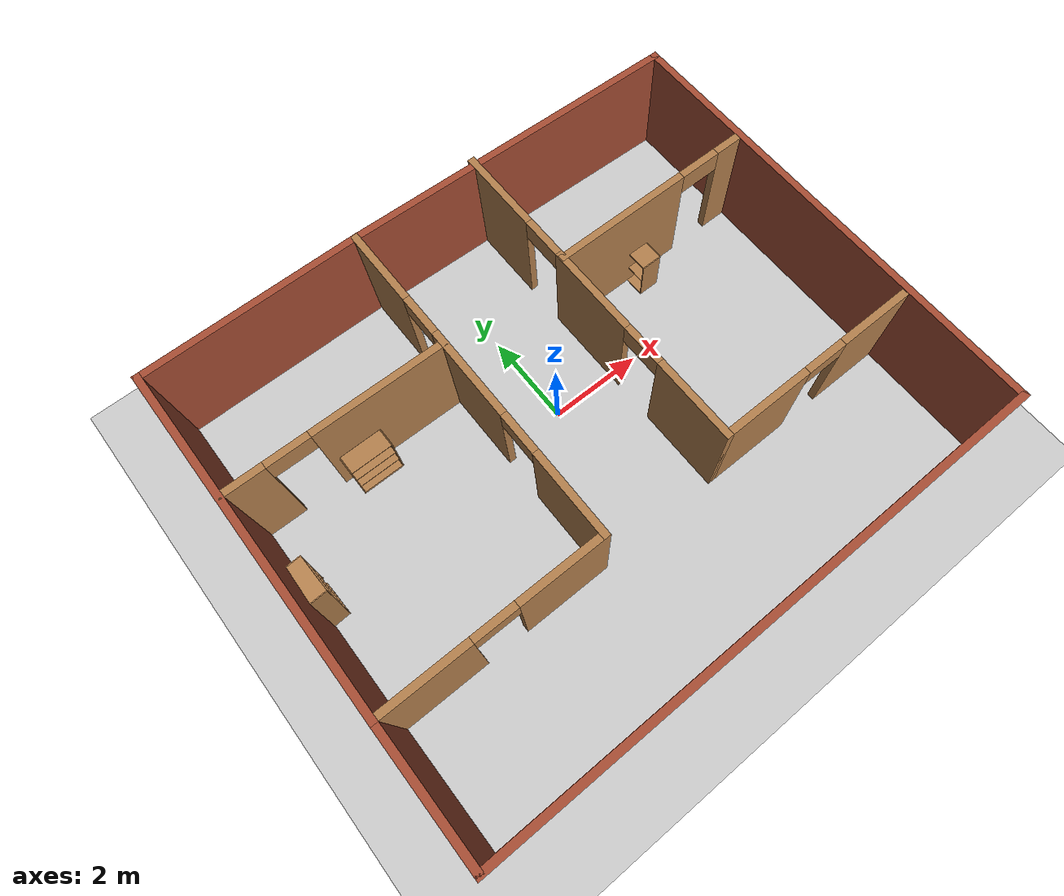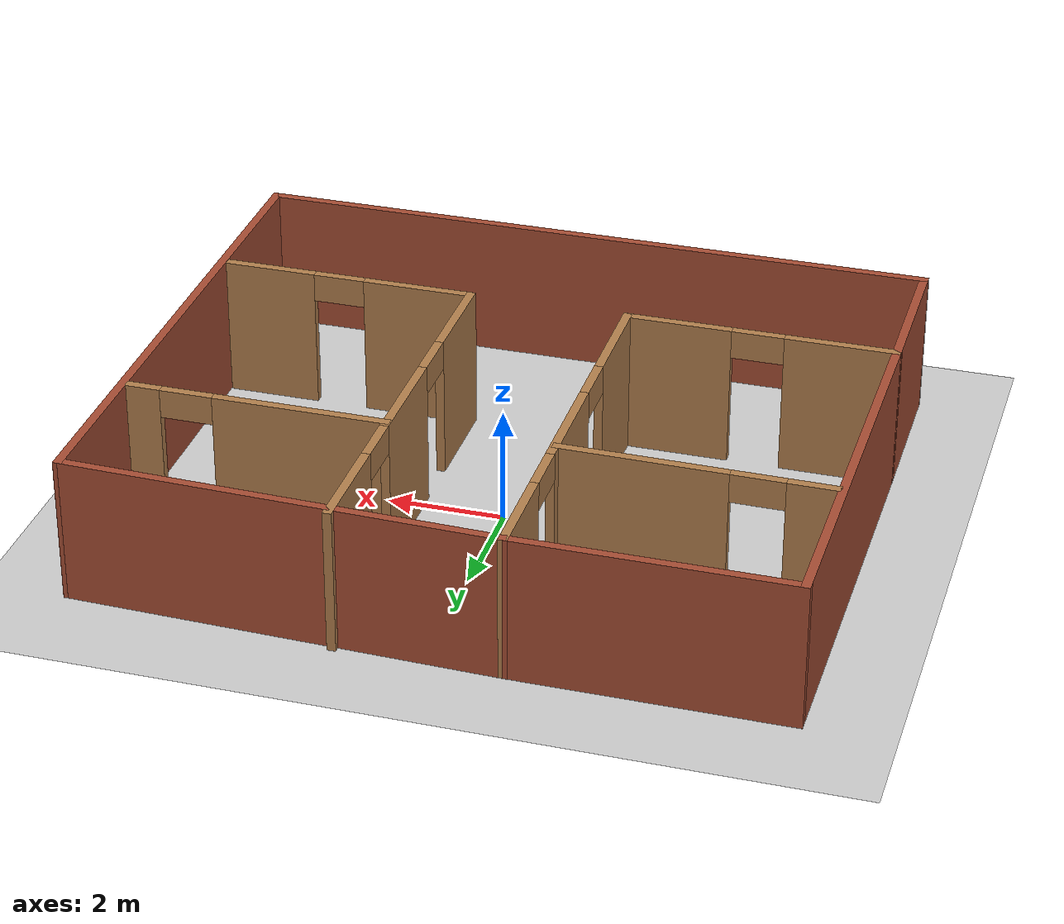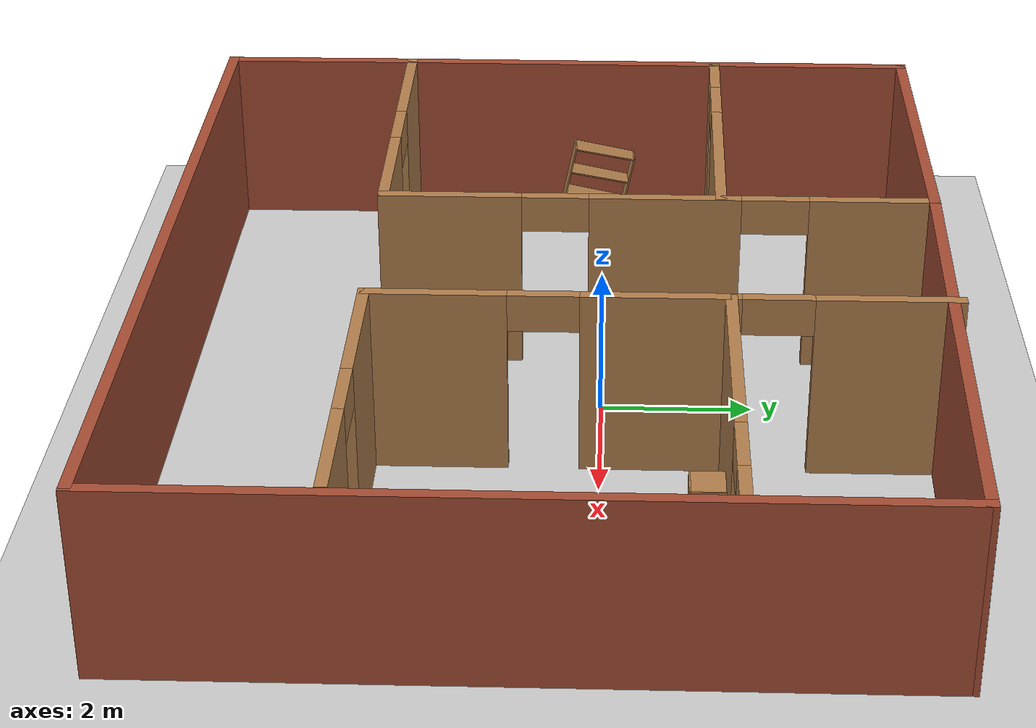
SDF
<sdf version="1.7">
 <world name="default">
  <light name="sun" type="directional">
   <pose>0 0 10 0 -0 0</pose>
   <diffuse>0.8 0.8 0.8 1</diffuse>
   <specular>0.2 0.2 0.2 1</specular>
   <attenuation>
    <range>1000</range>
    <constant>0.9</constant>
    <linear>0.01</linear>
    <quadratic>0.001</quadratic>
   </attenuation>
   <direction>-0.5 0.1 -0.9</direction>
   <spot><inner_angle>0</inner_angle><outer_angle>0</outer_angle><falloff>0</falloff></spot>
  </light>
  <model name="ground_plane">
   <static>1</static>
   <link name="link">
    <collision name="collision">
     <geometry><plane><normal>0 0 1</normal><size>100 100</size></plane></geometry>
     <surface>
      <contact><collide_bitmask>65535</collide_bitmask></contact>
      <friction><ode><mu>100</mu><mu2>50</mu2></ode></friction>
     </surface>
    </collision>
    <visual name="visual">
     <cast_shadows>0</cast_shadows>
     <geometry><plane><normal>0 0 1</normal><size>100 100</size></plane></geometry>
     <material>
      <script><uri>file://media/materials/scripts/gazebo.material</uri><name>Gazebo/Grey</name></script>
     </material>
    </visual>
   </link>
  </model>
  <gravity>0 0 -9.8</gravity>
  <magnetic_field>6e-06 2.3e-05 -4.2e-05</magnetic_field>
  <atmosphere type="adiabatic"/>
  <physics type="ode">
   <max_step_size>0.001</max_step_size>
   <real_time_factor>1</real_time_factor>
   <real_time_update_rate>1000</real_time_update_rate>
  </physics>
  <scene><ambient>0.4 0.4 0.4 1</ambient><background>0.7 0.7 0.7 1</background><shadows>1</shadows></scene>
  <audio><device>default</device></audio>
  <spherical_coordinates>
   <surface_model>EARTH_WGS84</surface_model>
   <latitude_deg>0</latitude_deg>
   <longitude_deg>0</longitude_deg>
   <elevation>0</elevation>
   <heading_deg>0</heading_deg>
  </spherical_coordinates>
  <model name="my_floor">
   <pose>0.028516 -0.622808 0 0 -0 0</pose>
   <link name="Wall_0">
    <collision name="Wall_0_Collision">
     <geometry><box><size>7.5 0.15 2.5</size></box></geometry>
     <pose>0 0 1.25 0 -0 0</pose>
    </collision>
    <visual name="Wall_0_Visual">
     <pose>0 0 1.25 0 -0 0</pose>
     <geometry><box><size>7.5 0.15 2.5</size></box></geometry>
     <material>
      <script><uri>file://media/materials/scripts/gazebo.material</uri><name>Gazebo/Bricks</name></script>
      <ambient>1 1 1 1</ambient>
     </material>
     <meta><layer>0</layer></meta>
    </visual>
    <pose>-5.93583 1.34361 0 0 -0 -1.5708</pose>
   </link>
   <link name="Wall_1">
    <pose>-3.63583 -2.33139 0 0 -0 0</pose>
    <visual name="Wall_1_Visual_0">
     <pose>-1.39591 0 1.25 0 -0 0</pose>
     <geometry><box><size>1.95817 0.15 2.5</size></box></geometry>
     <material>
      <script><uri>file://media/materials/scripts/gazebo.material</uri><name>Gazebo/Wood</name></script>
      <ambient>1 1 1 1</ambient>
     </material>
     <meta><layer>0</layer></meta>
    </visual>
    <collision name="Wall_1_Collision_0">
     <geometry><box><size>1.95817 0.15 2.5</size></box></geometry>
     <pose>-1.39591 0 1.25 0 -0 0</pose>
    </collision>
    <visual name="Wall_1_Visual_1">
     <pose>1.42909 0 1.25 0 -0 0</pose>
     <geometry><box><size>1.89183 0.15 2.5</size></box></geometry>
     <material>
      <script><uri>file://media/materials/scripts/gazebo.material</uri><name>Gazebo/Wood</name></script>
      <ambient>1 1 1 1</ambient>
     </material>
     <meta><layer>0</layer></meta>
    </visual>
    <collision name="Wall_1_Collision_1">
     <geometry><box><size>1.89183 0.15 2.5</size></box></geometry>
     <pose>1.42909 0 1.25 0 -0 0</pose>
    </collision>
    <visual name="Wall_1_Visual_2">
     <pose>0.033174 0 2.25 0 -0 0</pose>
     <geometry><box><size>0.9 0.15 0.5</size></box></geometry>
     <material>
      <script><uri>file://media/materials/scripts/gazebo.material</uri><name>Gazebo/Wood</name></script>
      <ambient>1 1 1 1</ambient>
     </material>
     <meta><layer>0</layer></meta>
    </visual>
    <collision name="Wall_1_Collision_2">
     <geometry><box><size>0.9 0.15 0.5</size></box></geometry>
     <pose>0.033174 0 2.25 0 -0 0</pose>
    </collision>
   </link>
   <link name="Wall_11">
    <pose>1.42574 1.36373 0 0 -0 -1.5708</pose>
    <visual name="Wall_11_Visual_0">
     <pose>-2.8212 0 1.25 0 -0 0</pose>
     <geometry><box><size>1.85761 0.15 2.5</size></box></geometry>
     <material>
      <script><uri>file://media/materials/scripts/gazebo.material</uri><name>Gazebo/Wood</name></script>
      <ambient>1 1 1 1</ambient>
     </material>
     <meta><layer>0</layer></meta>
    </visual>
    <collision name="Wall_11_Collision_0">
     <geometry><box><size>1.85761 0.15 2.5</size></box></geometry>
     <pose>-2.8212 0 1.25 0 -0 0</pose>
    </collision>
    <visual name="Wall_11_Visual_1">
     <pose>0.005784 0 1.25 0 -0 0</pose>
     <geometry><box><size>1.99635 0.15 2.5</size></box></geometry>
     <material>
      <script><uri>file://media/materials/scripts/gazebo.material</uri><name>Gazebo/Wood</name></script>
      <ambient>1 1 1 1</ambient>
     </material>
     <meta><layer>0</layer></meta>
    </visual>
    <collision name="Wall_11_Collision_1">
     <geometry><box><size>1.99635 0.15 2.5</size></box></geometry>
     <pose>0.005784 0 1.25 0 -0 0</pose>
    </collision>
    <visual name="Wall_11_Visual_2">
     <pose>2.82698 0 1.25 0 -0 0</pose>
     <geometry><box><size>1.84604 0.15 2.5</size></box></geometry>
     <material>
      <script><uri>file://media/materials/scripts/gazebo.material</uri><name>Gazebo/Wood</name></script>
      <ambient>1 1 1 1</ambient>
     </material>
     <meta><layer>0</layer></meta>
    </visual>
    <collision name="Wall_11_Collision_2">
     <geometry><box><size>1.84604 0.15 2.5</size></box></geometry>
     <pose>2.82698 0 1.25 0 -0 0</pose>
    </collision>
    <visual name="Wall_11_Visual_3">
     <pose>-1.44239 0 2.25 0 -0 0</pose>
     <geometry><box><size>0.9 0.15 0.5</size></box></geometry>
     <material>
      <script><uri>file://media/materials/scripts/gazebo.material</uri><name>Gazebo/Wood</name></script>
      <ambient>1 1 1 1</ambient>
     </material>
     <meta><layer>0</layer></meta>
    </visual>
    <collision name="Wall_11_Collision_3">
     <geometry><box><size>0.9 0.15 0.5</size></box></geometry>
     <pose>-1.44239 0 2.25 0 -0 0</pose>
    </collision>
    <visual name="Wall_11_Visual_4">
     <pose>1.45396 0 2.25 0 -0 0</pose>
     <geometry><box><size>0.9 0.15 0.5</size></box></geometry>
     <material>
      <script><uri>file://media/materials/scripts/gazebo.material</uri><name>Gazebo/Wood</name></script>
      <ambient>1 1 1 1</ambient>
     </material>
     <meta><layer>0</layer></meta>
    </visual>
    <collision name="Wall_11_Collision_4">
     <geometry><box><size>0.9 0.15 0.5</size></box></geometry>
     <pose>1.45396 0 2.25 0 -0 0</pose>
    </collision>
   </link>
   <link name="Wall_12">
    <pose>3.60074 -2.31127 0 0 -0 0</pose>
    <visual name="Wall_12_Visual_0">
     <pose>-1.26086 0 1.25 0 -0 0</pose>
     <geometry><box><size>1.97829 0.15 2.5</size></box></geometry>
     <material>
      <script><uri>file://media/materials/scripts/gazebo.material</uri><name>Gazebo/Wood</name></script>
      <ambient>1 1 1 1</ambient>
     </material>
     <meta><layer>0</layer></meta>
    </visual>
    <collision name="Wall_12_Collision_0">
     <geometry><box><size>1.97829 0.15 2.5</size></box></geometry>
     <pose>-1.26086 0 1.25 0 -0 0</pose>
    </collision>
    <visual name="Wall_12_Visual_1">
     <pose>1.43914 0 1.25 0 -0 0</pose>
     <geometry><box><size>1.62171 0.15 2.5</size></box></geometry>
     <material>
      <script><uri>file://media/materials/scripts/gazebo.material</uri><name>Gazebo/Wood</name></script>
      <ambient>1 1 1 1</ambient>
     </material>
     <meta><layer>0</layer></meta>
    </visual>
    <collision name="Wall_12_Collision_1">
     <geometry><box><size>1.62171 0.15 2.5</size></box></geometry>
     <pose>1.43914 0 1.25 0 -0 0</pose>
    </collision>
    <visual name="Wall_12_Visual_2">
     <pose>0.178288 0 2.25 0 -0 0</pose>
     <geometry><box><size>0.9 0.15 0.5</size></box></geometry>
     <material>
      <script><uri>file://media/materials/scripts/gazebo.material</uri><name>Gazebo/Wood</name></script>
      <ambient>1 1 1 1</ambient>
     </material>
     <meta><layer>0</layer></meta>
    </visual>
    <collision name="Wall_12_Collision_2">
     <geometry><box><size>0.9 0.15 0.5</size></box></geometry>
     <pose>0.178288 0 2.25 0 -0 0</pose>
    </collision>
   </link>
   <link name="Wall_14">
    <pose>3.62085 2.22283 0 0 -0 0</pose>
    <visual name="Wall_14_Visual_0">
     <pose>-0.74796 0 1.25 0 -0 0</pose>
     <geometry><box><size>3.00408 0.15 2.5</size></box></geometry>
     <material>
      <script><uri>file://media/materials/scripts/gazebo.material</uri><name>Gazebo/Wood</name></script>
      <ambient>1 1 1 1</ambient>
     </material>
     <meta><layer>0</layer></meta>
    </visual>
    <collision name="Wall_14_Collision_0">
     <geometry><box><size>3.00408 0.15 2.5</size></box></geometry>
     <pose>-0.74796 0 1.25 0 -0 0</pose>
    </collision>
    <visual name="Wall_14_Visual_1">
     <pose>1.95204 0 1.25 0 -0 0</pose>
     <geometry><box><size>0.59592 0.15 2.5</size></box></geometry>
     <material>
      <script><uri>file://media/materials/scripts/gazebo.material</uri><name>Gazebo/Wood</name></script>
      <ambient>1 1 1 1</ambient>
     </material>
     <meta><layer>0</layer></meta>
    </visual>
    <collision name="Wall_14_Collision_1">
     <geometry><box><size>0.59592 0.15 2.5</size></box></geometry>
     <pose>1.95204 0 1.25 0 -0 0</pose>
    </collision>
    <visual name="Wall_14_Visual_2">
     <pose>1.20408 0 2.25 0 -0 0</pose>
     <geometry><box><size>0.9 0.15 0.5</size></box></geometry>
     <material>
      <script><uri>file://media/materials/scripts/gazebo.material</uri><name>Gazebo/Wood</name></script>
      <ambient>1 1 1 1</ambient>
     </material>
     <meta><layer>0</layer></meta>
    </visual>
    <collision name="Wall_14_Collision_2">
     <geometry><box><size>0.9 0.15 0.5</size></box></geometry>
     <pose>1.20408 0 2.25 0 -0 0</pose>
    </collision>
   </link>
   <link name="Wall_16">
    <collision name="Wall_16_Collision">
     <geometry><box><size>2.85686 0.15 2.5</size></box></geometry>
     <pose>0 0 1.25 0 -0 0</pose>
    </collision>
    <visual name="Wall_16_Visual">
     <pose>0 0 1.25 0 -0 0</pose>
     <geometry><box><size>2.85686 0.15 2.5</size></box></geometry>
     <material>
      <script><uri>file://media/materials/scripts/gazebo.material</uri><name>Gazebo/Bricks</name></script>
      <ambient>1 1 1 1</ambient>
     </material>
     <meta><layer>0</layer></meta>
    </visual>
    <pose>-5.92577 -3.68478 0 0 -0 -1.56337</pose>
   </link>
   <link name="Wall_2">
    <pose>-1.33583 1.34361 0 0 -0 1.5708</pose>
    <visual name="Wall_2_Visual_0">
     <pose>-2.78675 0 1.25 0 -0 0</pose>
     <geometry><box><size>1.92649 0.15 2.5</size></box></geometry>
     <material>
      <script><uri>file://media/materials/scripts/gazebo.material</uri><name>Gazebo/Wood</name></script>
      <ambient>1 1 1 1</ambient>
     </material>
     <meta><layer>0</layer></meta>
    </visual>
    <collision name="Wall_2_Collision_0">
     <geometry><box><size>1.92649 0.15 2.5</size></box></geometry>
     <pose>-2.78675 0 1.25 0 -0 0</pose>
    </collision>
    <visual name="Wall_2_Visual_1">
     <pose>0.094784 0 1.25 0 -0 0</pose>
     <geometry><box><size>2.03658 0.15 2.5</size></box></geometry>
     <material>
      <script><uri>file://media/materials/scripts/gazebo.material</uri><name>Gazebo/Wood</name></script>
      <ambient>1 1 1 1</ambient>
     </material>
     <meta><layer>0</layer></meta>
    </visual>
    <collision name="Wall_2_Collision_1">
     <geometry><box><size>2.03658 0.15 2.5</size></box></geometry>
     <pose>0.094784 0 1.25 0 -0 0</pose>
    </collision>
    <visual name="Wall_2_Visual_2">
     <pose>2.88154 0 1.25 0 -0 0</pose>
     <geometry><box><size>1.73693 0.15 2.5</size></box></geometry>
     <material>
      <script><uri>file://media/materials/scripts/gazebo.material</uri><name>Gazebo/Wood</name></script>
      <ambient>1 1 1 1</ambient>
     </material>
     <meta><layer>0</layer></meta>
    </visual>
    <collision name="Wall_2_Collision_2">
     <geometry><box><size>1.73693 0.15 2.5</size></box></geometry>
     <pose>2.88154 0 1.25 0 -0 0</pose>
    </collision>
    <visual name="Wall_2_Visual_3">
     <pose>-1.37351 0 2.25 0 -0 0</pose>
     <geometry><box><size>0.9 0.15 0.5</size></box></geometry>
     <material>
      <script><uri>file://media/materials/scripts/gazebo.material</uri><name>Gazebo/Wood</name></script>
      <ambient>1 1 1 1</ambient>
     </material>
     <meta><layer>0</layer></meta>
    </visual>
    <collision name="Wall_2_Collision_3">
     <geometry><box><size>0.9 0.15 0.5</size></box></geometry>
     <pose>-1.37351 0 2.25 0 -0 0</pose>
    </collision>
    <visual name="Wall_2_Visual_4">
     <pose>1.56307 0 2.25 0 -0 0</pose>
     <geometry><box><size>0.9 0.15 0.5</size></box></geometry>
     <material>
      <script><uri>file://media/materials/scripts/gazebo.material</uri><name>Gazebo/Wood</name></script>
      <ambient>1 1 1 1</ambient>
     </material>
     <meta><layer>0</layer></meta>
    </visual>
    <collision name="Wall_2_Collision_4">
     <geometry><box><size>0.9 0.15 0.5</size></box></geometry>
     <pose>1.56307 0 2.25 0 -0 0</pose>
    </collision>
   </link>
   <link name="Wall_3">
    <collision name="Wall_3_Collision">
     <geometry><box><size>4.75 0.15 2.5</size></box></geometry>
     <pose>0 0 1.25 0 -0 0</pose>
    </collision>
    <visual name="Wall_3_Visual">
     <pose>0 0 1.25 0 -0 0</pose>
     <geometry><box><size>4.75 0.15 2.5</size></box></geometry>
     <material>
      <script><uri>file://media/materials/scripts/gazebo.material</uri><name>Gazebo/Bricks</name></script>
      <ambient>1 1 1 1</ambient>
     </material>
     <meta><layer>0</layer></meta>
    </visual>
    <pose>-3.63583 5.01861 0 0 -0 3.14159</pose>
   </link>
   <link name="Wall_5">
    <pose>-3.62277 2.20271 0 0 -0 -0.008928</pose>
    <visual name="Wall_5_Visual_0">
     <pose>-1.88149 0 1.25 0 -0 0</pose>
     <geometry><box><size>0.892643 0.15 2.5</size></box></geometry>
     <material>
      <script><uri>file://media/materials/scripts/gazebo.material</uri><name>Gazebo/Wood</name></script>
      <ambient>1 1 1 1</ambient>
     </material>
     <meta><layer>0</layer></meta>
    </visual>
    <collision name="Wall_5_Collision_0">
     <geometry><box><size>0.892643 0.15 2.5</size></box></geometry>
     <pose>-1.88149 0 1.25 0 -0 0</pose>
    </collision>
    <visual name="Wall_5_Visual_1">
     <pose>0.896322 0 1.25 0 -0 0</pose>
     <geometry><box><size>2.86298 0.15 2.5</size></box></geometry>
     <material>
      <script><uri>file://media/materials/scripts/gazebo.material</uri><name>Gazebo/Wood</name></script>
      <ambient>1 1 1 1</ambient>
     </material>
     <meta><layer>0</layer></meta>
    </visual>
    <collision name="Wall_5_Collision_1">
     <geometry><box><size>2.86298 0.15 2.5</size></box></geometry>
     <pose>0.896322 0 1.25 0 -0 0</pose>
    </collision>
    <visual name="Wall_5_Visual_2">
     <pose>-0.985167 0 2.25 0 -0 0</pose>
     <geometry><box><size>0.9 0.15 0.5</size></box></geometry>
     <material>
      <script><uri>file://media/materials/scripts/gazebo.material</uri><name>Gazebo/Wood</name></script>
      <ambient>1 1 1 1</ambient>
     </material>
     <meta><layer>0</layer></meta>
    </visual>
    <collision name="Wall_5_Collision_2">
     <geometry><box><size>0.9 0.15 0.5</size></box></geometry>
     <pose>-0.985167 0 2.25 0 -0 0</pose>
    </collision>
   </link>
   <link name="Wall_7">
    <collision name="Wall_7_Collision">
     <geometry><box><size>12 0.15 2.5</size></box></geometry>
     <pose>0 0 1.25 0 -0 0</pose>
    </collision>
    <visual name="Wall_7_Visual">
     <pose>0 0 1.25 0 -0 0</pose>
     <geometry><box><size>12 0.15 2.5</size></box></geometry>
     <material>
      <script><uri>file://media/materials/scripts/gazebo.material</uri><name>Gazebo/Bricks</name></script>
      <ambient>1 1 1 1</ambient>
     </material>
     <meta><layer>0</layer></meta>
    </visual>
    <pose>0.009283 -5.03817 0 0 -0 0</pose>
   </link>
   <link name="Wall_8">
    <collision name="Wall_8_Collision">
     <geometry><box><size>10 0.15 2.5</size></box></geometry>
     <pose>0 0 1.25 0 -0 0</pose>
    </collision>
    <visual name="Wall_8_Visual">
     <pose>0 0 1.25 0 -0 0</pose>
     <geometry><box><size>10 0.15 2.5</size></box></geometry>
     <material>
      <script><uri>file://media/materials/scripts/gazebo.material</uri><name>Gazebo/Bricks</name></script>
      <ambient>1 1 1 1</ambient>
     </material>
     <meta><layer>0</layer></meta>
    </visual>
    <pose>5.93428 -0.113172 0 0 -0 1.5708</pose>
   </link>
   <link name="Wall_9">
    <collision name="Wall_9_Collision">
     <geometry><box><size>7.42305 0.15 2.5</size></box></geometry>
     <pose>0 0 1.25 0 -0 0</pose>
    </collision>
    <visual name="Wall_9_Visual">
     <pose>0 0 1.25 0 -0 0</pose>
     <geometry><box><size>7.42305 0.15 2.5</size></box></geometry>
     <material>
      <script><uri>file://media/materials/scripts/gazebo.material</uri><name>Gazebo/Bricks</name></script>
      <ambient>1 1 1 1</ambient>
     </material>
     <meta><layer>0</layer></meta>
    </visual>
    <pose>2.29923 4.91522 0 0 -0 3.11316</pose>
   </link>
   <static>1</static>
  </model>
  <model name="bookshelf">
   <static>1</static>
   <link name="link">
    <inertial><mass>1</mass></inertial>
    <collision name="back">
     <pose>0 0.005 0.6 0 -0 0</pose>
     <geometry><box><size>0.9 0.01 1.2</size></box></geometry>
    </collision>
    <visual name="visual1">
     <pose>0 0.005 0.6 0 -0 0</pose>
     <geometry><box><size>0.9 0.01 1.2</size></box></geometry>
     <material>
      <script><uri>file://media/materials/scripts/gazebo.material</uri><name>Gazebo/Wood</name></script>
     </material>
    </visual>
    <collision name="left_side">
     <pose>0.45 -0.195 0.6 0 -0 0</pose>
     <geometry><box><size>0.02 0.4 1.2</size></box></geometry>
    </collision>
    <visual name="visual2">
     <pose>0.45 -0.195 0.6 0 -0 0</pose>
     <geometry><box><size>0.02 0.4 1.2</size></box></geometry>
     <material>
      <script><uri>file://media/materials/scripts/gazebo.material</uri><name>Gazebo/Wood</name></script>
     </material>
    </visual>
    <collision name="right_side">
     <pose>-0.45 -0.195 0.6 0 -0 0</pose>
     <geometry><box><size>0.02 0.4 1.2</size></box></geometry>
    </collision>
    <visual name="visual3">
     <pose>-0.45 -0.195 0.6 0 -0 0</pose>
     <geometry><box><size>0.02 0.4 1.2</size></box></geometry>
     <material>
      <script><uri>file://media/materials/scripts/gazebo.material</uri><name>Gazebo/Wood</name></script>
     </material>
    </visual>
    <collision name="bottom">
     <pose>0 -0.195 0.03 0 -0 0</pose>
     <geometry><box><size>0.88 0.4 0.06</size></box></geometry>
    </collision>
    <visual name="visual4">
     <pose>0 -0.195 0.03 0 -0 0</pose>
     <geometry><box><size>0.88 0.4 0.06</size></box></geometry>
     <material>
      <script><uri>file://media/materials/scripts/gazebo.material</uri><name>Gazebo/Wood</name></script>
     </material>
    </visual>
    <collision name="top">
     <pose>0 -0.195 1.19 0 -0 0</pose>
     <geometry><box><size>0.88 0.4 0.02</size></box></geometry>
    </collision>
    <visual name="visual5">
     <pose>0 -0.195 1.19 0 -0 0</pose>
     <geometry><box><size>0.88 0.4 0.02</size></box></geometry>
     <material>
      <script><uri>file://media/materials/scripts/gazebo.material</uri><name>Gazebo/Wood</name></script>
     </material>
    </visual>
    <collision name="low_shelf">
     <pose>0 -0.195 0.43 0 -0 0</pose>
     <geometry><box><size>0.88 0.4 0.02</size></box></geometry>
    </collision>
    <visual name="visual6">
     <pose>0 -0.195 0.43 0 -0 0</pose>
     <geometry><box><size>0.88 0.4 0.02</size></box></geometry>
     <material>
      <script><uri>file://media/materials/scripts/gazebo.material</uri><name>Gazebo/Wood</name></script>
     </material>
    </visual>
    <collision name="high_shelf">
     <pose>0 -0.195 0.8 0 -0 0</pose>
     <geometry><box><size>0.88 0.4 0.02</size></box></geometry>
    </collision>
    <visual name="visual7">
     <pose>0 -0.195 0.8 0 -0 0</pose>
     <geometry><box><size>0.88 0.4 0.02</size></box></geometry>
     <material>
      <script><uri>file://media/materials/scripts/gazebo.material</uri><name>Gazebo/Wood</name></script>
     </material>
    </visual>
   </link>
   <pose>-3.51006 1.47275 0 0 -0 0</pose>
  </model>
  <model name="bookshelf_0">
   <static>1</static>
   <link name="link">
    <inertial><mass>1</mass></inertial>
    <collision name="back">
     <pose>0 0.005 0.6 0 -0 0</pose>
     <geometry><box><size>0.9 0.01 1.2</size></box></geometry>
    </collision>
    <visual name="visual1">
     <pose>0 0.005 0.6 0 -0 0</pose>
     <geometry><box><size>0.9 0.01 1.2</size></box></geometry>
     <material>
      <script><uri>file://media/materials/scripts/gazebo.material</uri><name>Gazebo/Wood</name></script>
     </material>
    </visual>
    <collision name="left_side">
     <pose>0.45 -0.195 0.6 0 -0 0</pose>
     <geometry><box><size>0.02 0.4 1.2</size></box></geometry>
    </collision>
    <visual name="visual2">
     <pose>0.45 -0.195 0.6 0 -0 0</pose>
     <geometry><box><size>0.02 0.4 1.2</size></box></geometry>
     <material>
      <script><uri>file://media/materials/scripts/gazebo.material</uri><name>Gazebo/Wood</name></script>
     </material>
    </visual>
    <collision name="right_side">
     <pose>-0.45 -0.195 0.6 0 -0 0</pose>
     <geometry><box><size>0.02 0.4 1.2</size></box></geometry>
    </collision>
    <visual name="visual3">
     <pose>-0.45 -0.195 0.6 0 -0 0</pose>
     <geometry><box><size>0.02 0.4 1.2</size></box></geometry>
     <material>
      <script><uri>file://media/materials/scripts/gazebo.material</uri><name>Gazebo/Wood</name></script>
     </material>
    </visual>
    <collision name="bottom">
     <pose>0 -0.195 0.03 0 -0 0</pose>
     <geometry><box><size>0.88 0.4 0.06</size></box></geometry>
    </collision>
    <visual name="visual4">
     <pose>0 -0.195 0.03 0 -0 0</pose>
     <geometry><box><size>0.88 0.4 0.06</size></box></geometry>
     <material>
      <script><uri>file://media/materials/scripts/gazebo.material</uri><name>Gazebo/Wood</name></script>
     </material>
    </visual>
    <collision name="top">
     <pose>0 -0.195 1.19 0 -0 0</pose>
     <geometry><box><size>0.88 0.4 0.02</size></box></geometry>
    </collision>
    <visual name="visual5">
     <pose>0 -0.195 1.19 0 -0 0</pose>
     <geometry><box><size>0.88 0.4 0.02</size></box></geometry>
     <material>
      <script><uri>file://media/materials/scripts/gazebo.material</uri><name>Gazebo/Wood</name></script>
     </material>
    </visual>
    <collision name="low_shelf">
     <pose>0 -0.195 0.43 0 -0 0</pose>
     <geometry><box><size>0.88 0.4 0.02</size></box></geometry>
    </collision>
    <visual name="visual6">
     <pose>0 -0.195 0.43 0 -0 0</pose>
     <geometry><box><size>0.88 0.4 0.02</size></box></geometry>
     <material>
      <script><uri>file://media/materials/scripts/gazebo.material</uri><name>Gazebo/Wood</name></script>
     </material>
    </visual>
    <collision name="high_shelf">
     <pose>0 -0.195 0.8 0 -0 0</pose>
     <geometry><box><size>0.88 0.4 0.02</size></box></geometry>
    </collision>
    <visual name="visual7">
     <pose>0 -0.195 0.8 0 -0 0</pose>
     <geometry><box><size>0.88 0.4 0.02</size></box></geometry>
     <material>
      <script><uri>file://media/materials/scripts/gazebo.material</uri><name>Gazebo/Wood</name></script>
     </material>
    </visual>
   </link>
   <pose>-5.89565 -0.278764 0 0.01297 0.202298 1.62013</pose>
  </model>
  <model name="cabinet">
   <static>1</static>
   <link name="cabinet_bottom_plate">
    <inertial>
     <pose>0 0 -1 0 -0 0</pose>
     <inertia><ixx>2.05</ixx><ixy>0</ixy><ixz>0</ixz><iyy>2.05</iyy><iyz>0</iyz><izz>2.05</izz></inertia>
     <mass>25</mass>
    </inertial>
    <collision name="cabinet_bottom_plate_geom">
     <pose>0 0 0.01 0 -0 0</pose>
     <geometry><box><size>0.45 0.45 0.02</size></box></geometry>
    </collision>
    <visual name="cabinet_bottom_plate_geom_visual">
     <pose>0 0 0.01 0 -0 0</pose>
     <geometry><box><size>0.45 0.45 0.02</size></box></geometry>
     <material>
      <script><uri>file://media/materials/scripts/gazebo.material</uri><name>Gazebo/Wood</name></script>
     </material>
    </visual>
    <collision name="cabinet_bottom_plate_geom_cabinet_back_plate">
     <pose>0.235 0 0.51 0 -0 0</pose>
     <geometry><box><size>0.02 0.45 1.02</size></box></geometry>
    </collision>
    <visual name="cabinet_bottom_plate_geom_cabinet_back_plate_visual">
     <pose>0.235 0 0.51 0 -0 0</pose>
     <geometry><box><size>0.02 0.45 1.02</size></box></geometry>
     <material>
      <script><uri>file://media/materials/scripts/gazebo.material</uri><name>Gazebo/Wood</name></script>
     </material>
    </visual>
    <collision name="cabinet_bottom_plate_geom_cabinet_left_plate">
     <pose>0 0.235 0.51 0 -0 0</pose>
     <geometry><box><size>0.45 0.02 1.02</size></box></geometry>
    </collision>
    <visual name="cabinet_bottom_plate_geom_cabinet_left_plate_visual">
     <pose>0 0.235 0.51 0 -0 0</pose>
     <geometry><box><size>0.45 0.02 1.02</size></box></geometry>
     <material>
      <script><uri>file://media/materials/scripts/gazebo.material</uri><name>Gazebo/Wood</name></script>
     </material>
    </visual>
    <collision name="cabinet_bottom_plate_geom_cabinet_middle_plate">
     <pose>0 0 0.51 0 -0 0</pose>
     <geometry><box><size>0.45 0.45 0.02</size></box></geometry>
    </collision>
    <visual name="cabinet_bottom_plate_geom_cabinet_middle_plate_visual">
     <pose>0 0 0.51 0 -0 0</pose>
     <geometry><box><size>0.45 0.45 0.02</size></box></geometry>
     <material>
      <script><uri>file://media/materials/scripts/gazebo.material</uri><name>Gazebo/Wood</name></script>
     </material>
    </visual>
    <collision name="cabinet_bottom_plate_geom_cabinet_right_plate">
     <pose>0 -0.235 0.51 0 -0 0</pose>
     <geometry><box><size>0.45 0.02 1.02</size></box></geometry>
    </collision>
    <visual name="cabinet_bottom_plate_geom_cabinet_right_plate_visual">
     <pose>0 -0.235 0.51 0 -0 0</pose>
     <geometry><box><size>0.45 0.02 1.02</size></box></geometry>
     <material>
      <script><uri>file://media/materials/scripts/gazebo.material</uri><name>Gazebo/Wood</name></script>
     </material>
    </visual>
    <collision name="cabinet_bottom_plate_geom_cabinet_top_plate">
     <pose>0 0 1.01 0 -0 0</pose>
     <geometry><box><size>0.45 0.45 0.02</size></box></geometry>
    </collision>
    <visual name="cabinet_bottom_plate_geom_cabinet_top_plate_visual">
     <pose>0 0 1.01 0 -0 0</pose>
     <geometry><box><size>0.45 0.45 0.02</size></box></geometry>
     <material>
      <script><uri>file://media/materials/scripts/gazebo.material</uri><name>Gazebo/Wood</name></script>
     </material>
    </visual>
   </link>
   <pose>3.34708 1.32739 0 0 -0 0</pose>
  </model>
 </world>
</sdf>
